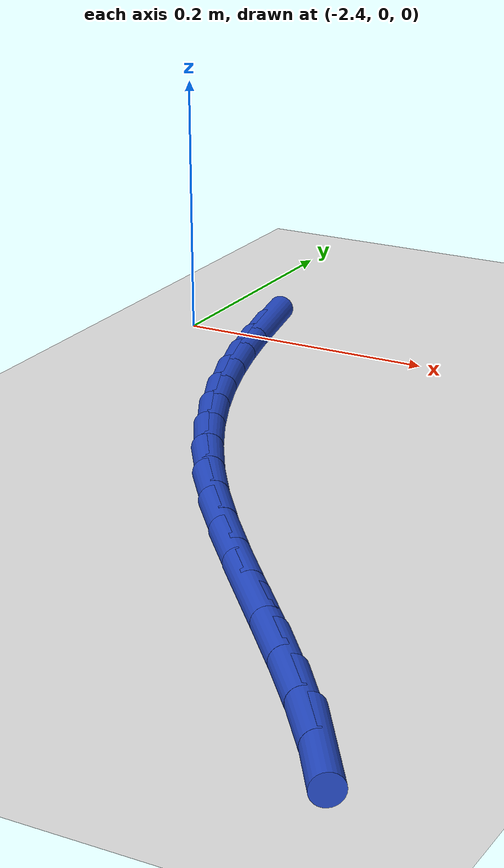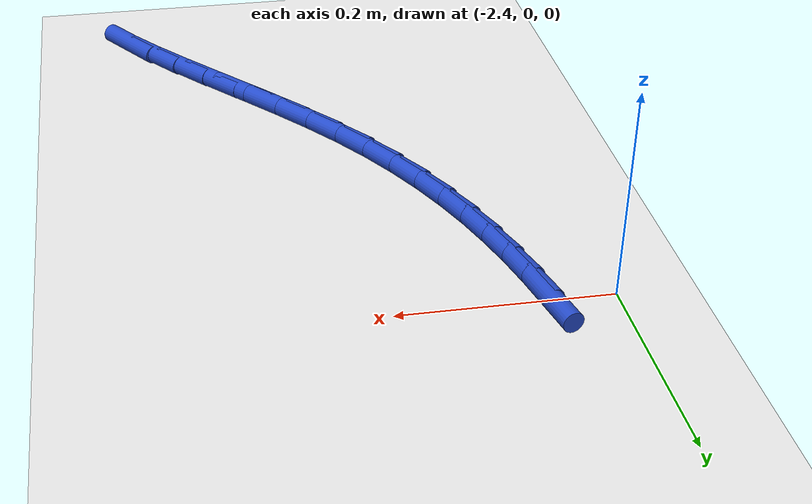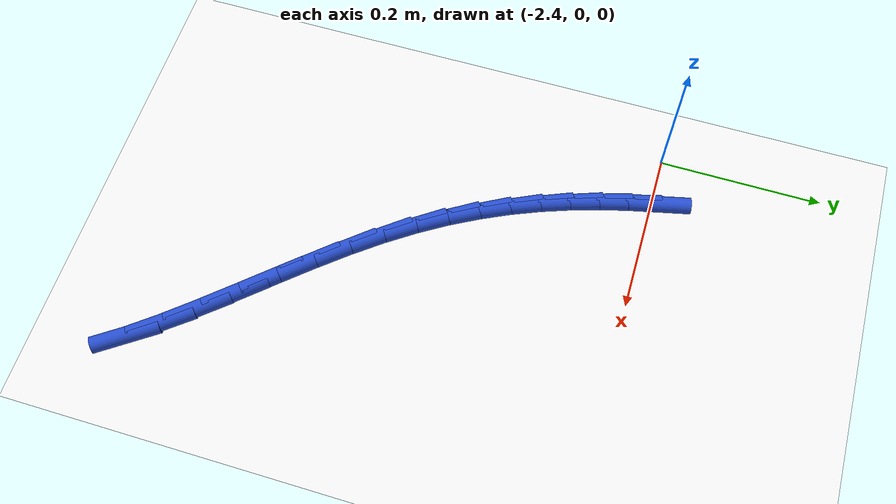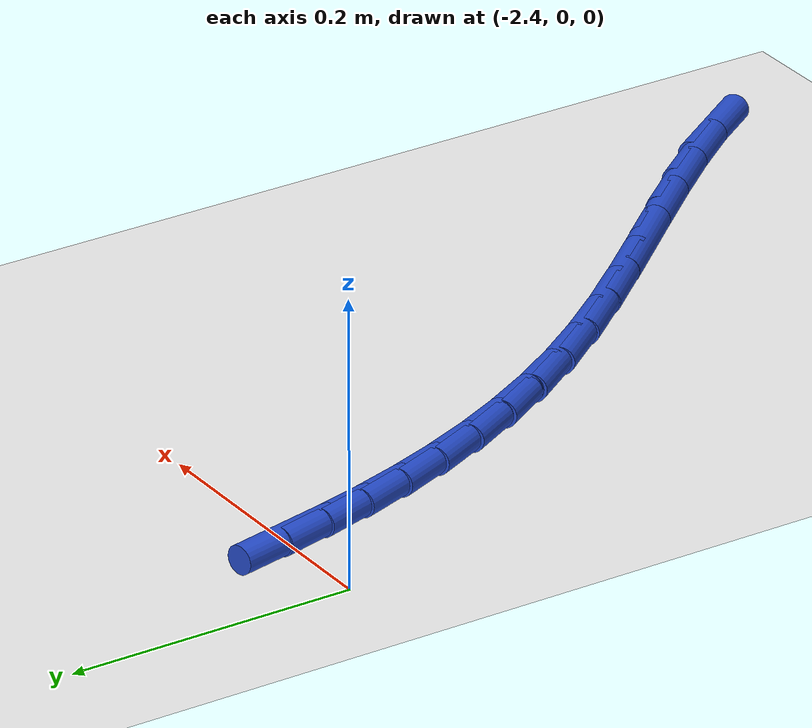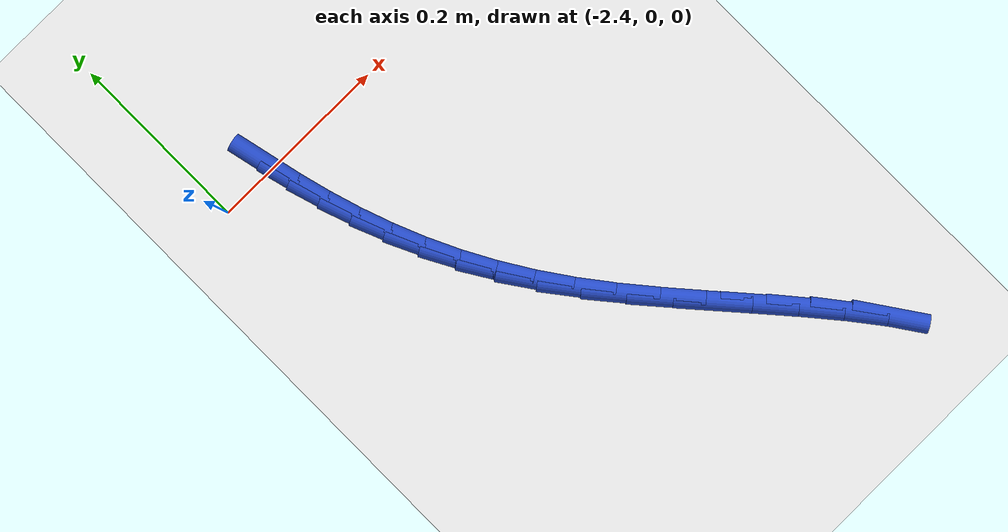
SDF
<sdf version="1.6">
 <world name="default">
  <model name="ground_plane">
   <static>1</static>
   <link name="link">
    <collision name="collision">
     <geometry><plane><normal>0 0 1</normal><size>100 100</size></plane></geometry>
     <surface><friction><ode><mu>100</mu><mu2>50</mu2></ode></friction></surface>
    </collision>
    <visual name="visual">
     <cast_shadows>0</cast_shadows>
     <geometry><plane><normal>0 0 1</normal><size>100 100</size></plane></geometry>
     <material>
      <script><uri>file://media/materials/scripts/gazebo.material</uri><name>Gazebo/WhiteGlow</name></script>
     </material>
    </visual>
   </link>
  </model>
  <model name="line">
   <link name="link_141">
    <pose>-2.3370290691386426 0.007452213844813646 0.01 0 1.57 -1.34808266676666</pose>
    <collision name="collision">
     <geometry><cylinder><radius>0.01</radius><length>0.08</length></cylinder></geometry>
    </collision>
    <visual name="visual">
     <material>
      <script><name>Gazebo/Blue</name><uri>file://media/materials/scripts/gazebo.material</uri></script>
     </material>
     <geometry><cylinder><radius>0.01</radius><length>0.08</length></cylinder></geometry>
    </visual>
   </link>
   <link name="link_142">
    <pose>-2.3292197806200314 -0.027030369682753946 0.01 0 1.57 -1.3132531029127608</pose>
    <collision name="collision">
     <geometry><cylinder><radius>0.01</radius><length>0.08</length></cylinder></geometry>
    </collision>
    <visual name="visual">
     <material>
      <script><name>Gazebo/Blue</name><uri>file://media/materials/scripts/gazebo.material</uri></script>
     </material>
     <geometry><cylinder><radius>0.01</radius><length>0.08</length></cylinder></geometry>
    </visual>
   </link>
   <link name="link_143">
    <pose>-2.3201745972051775 -0.061371436113978564 0.01 0 1.57 -1.2729318869511128</pose>
    <collision name="collision">
     <geometry><cylinder><radius>0.01</radius><length>0.08</length></cylinder></geometry>
    </collision>
    <visual name="visual">
     <material>
      <script><name>Gazebo/Blue</name><uri>file://media/materials/scripts/gazebo.material</uri></script>
     </material>
     <geometry><cylinder><radius>0.01</radius><length>0.08</length></cylinder></geometry>
    </visual>
   </link>
   <link name="link_144">
    <pose>-2.3096560827027606 -0.0956339348034042 0.01 0 1.57 -1.2278176258284499</pose>
    <collision name="collision">
     <geometry><cylinder><radius>0.01</radius><length>0.08</length></cylinder></geometry>
    </collision>
    <visual name="visual">
     <material>
      <script><name>Gazebo/Blue</name><uri>file://media/materials/scripts/gazebo.material</uri></script>
     </material>
     <geometry><cylinder><radius>0.01</radius><length>0.08</length></cylinder></geometry>
    </visual>
   </link>
   <link name="link_145">
    <pose>-2.297426800921459 -0.12988081510557495 0.01 0 1.57 -1.17878543084408</pose>
    <collision name="collision">
     <geometry><cylinder><radius>0.01</radius><length>0.08</length></cylinder></geometry>
    </collision>
    <visual name="visual">
     <material>
      <script><name>Gazebo/Blue</name><uri>file://media/materials/scripts/gazebo.material</uri></script>
     </material>
     <geometry><cylinder><radius>0.01</radius><length>0.08</length></cylinder></geometry>
    </visual>
   </link>
   <link name="link_146">
    <pose>-2.283249315669951 -0.16417502637503587 0.01 0 1.57 -1.126850292164816</pose>
    <collision name="collision">
     <geometry><cylinder><radius>0.01</radius><length>0.08</length></cylinder></geometry>
    </collision>
    <visual name="visual">
     <material>
      <script><name>Gazebo/Blue</name><uri>file://media/materials/scripts/gazebo.material</uri></script>
     </material>
     <geometry><cylinder><radius>0.01</radius><length>0.08</length></cylinder></geometry>
    </visual>
   </link>
   <link name="link_147">
    <pose>-2.266886190756918 -0.19857951796632892 0.01 0 1.57 -1.0731088317605708</pose>
    <collision name="collision">
     <geometry><cylinder><radius>0.01</radius><length>0.08</length></cylinder></geometry>
    </collision>
    <visual name="visual">
     <material>
      <script><name>Gazebo/Blue</name><uri>file://media/materials/scripts/gazebo.material</uri></script>
     </material>
     <geometry><cylinder><radius>0.01</radius><length>0.08</length></cylinder></geometry>
    </visual>
   </link>
   <link name="link_148">
    <pose>-2.248099989991038 -0.23315723923399928 0.01 0 1.57 -1.0186669999106865</pose>
    <collision name="collision">
     <geometry><cylinder><radius>0.01</radius><length>0.08</length></cylinder></geometry>
    </collision>
    <visual name="visual">
     <material>
      <script><name>Gazebo/Blue</name><uri>file://media/materials/scripts/gazebo.material</uri></script>
     </material>
     <geometry><cylinder><radius>0.01</radius><length>0.08</length></cylinder></geometry>
    </visual>
   </link>
   <link name="link_149">
    <pose>-2.2266532771809873 -0.2679711395325909 0.01 0 1.57 -0.9645658209293594</pose>
    <collision name="collision">
     <geometry><cylinder><radius>0.01</radius><length>0.08</length></cylinder></geometry>
    </collision>
    <visual name="visual">
     <material>
      <script><name>Gazebo/Blue</name><uri>file://media/materials/scripts/gazebo.material</uri></script>
     </material>
     <geometry><cylinder><radius>0.01</radius><length>0.08</length></cylinder></geometry>
    </visual>
   </link>
   <link name="link_150">
    <pose>-2.202308616135447 -0.30308416821664785 0.01 0 1.57 -0.9138054454530485</pose>
    <collision name="collision">
     <geometry><cylinder><radius>0.01</radius><length>0.08</length></cylinder></geometry>
    </collision>
    <visual name="visual">
     <material>
      <script><name>Gazebo/Blue</name><uri>file://media/materials/scripts/gazebo.material</uri></script>
     </material>
     <geometry><cylinder><radius>0.01</radius><length>0.08</length></cylinder></geometry>
    </visual>
   </link>
   <link name="link_151">
    <pose>-2.1749716896227813 -0.33852708443304586 0.01 0 1.57 -0.8773218003871431</pose>
    <collision name="collision">
     <geometry><cylinder><radius>0.01</radius><length>0.08</length></cylinder></geometry>
    </collision>
    <visual name="visual">
     <material>
      <script><name>Gazebo/Blue</name><uri>file://media/materials/scripts/gazebo.material</uri></script>
     </material>
     <geometry><cylinder><radius>0.01</radius><length>0.08</length></cylinder></geometry>
    </visual>
   </link>
   <link name="link_152">
    <pose>-2.1453646069098378 -0.3741470173009562 0.01 0 1.57 -0.8562101595774771</pose>
    <collision name="collision">
     <geometry><cylinder><radius>0.01</radius><length>0.08</length></cylinder></geometry>
    </collision>
    <visual name="visual">
     <material>
      <script><name>Gazebo/Blue</name><uri>file://media/materials/scripts/gazebo.material</uri></script>
     </material>
     <geometry><cylinder><radius>0.01</radius><length>0.08</length></cylinder></geometry>
    </visual>
   </link>
   <link name="link_153">
    <pose>-2.1144985359006574 -0.40972608109050446 0.01 0 1.57 -0.8486351070173503</pose>
    <collision name="collision">
     <geometry><cylinder><radius>0.01</radius><length>0.08</length></cylinder></geometry>
    </collision>
    <visual name="visual">
     <material>
      <script><name>Gazebo/Blue</name><uri>file://media/materials/scripts/gazebo.material</uri></script>
     </material>
     <geometry><cylinder><radius>0.01</radius><length>0.08</length></cylinder></geometry>
    </visual>
   </link>
   <link name="link_154">
    <pose>-2.0833849812307546 -0.4450463143344286 0.01 0 1.57 -0.8542216816335356</pose>
    <collision name="collision">
     <geometry><cylinder><radius>0.01</radius><length>0.08</length></cylinder></geometry>
    </collision>
    <visual name="visual">
     <material>
      <script><name>Gazebo/Blue</name><uri>file://media/materials/scripts/gazebo.material</uri></script>
     </material>
     <geometry><cylinder><radius>0.01</radius><length>0.08</length></cylinder></geometry>
    </visual>
   </link>
   <link name="link_155">
    <pose>-2.0530354475356436 -0.4798897555654679 0.01 0 1.57 -0.8740434300525161</pose>
    <collision name="collision">
     <geometry><cylinder><radius>0.01</radius><length>0.08</length></cylinder></geometry>
    </collision>
    <visual name="visual">
     <material>
      <script><name>Gazebo/Blue</name><uri>file://media/materials/scripts/gazebo.material</uri></script>
     </material>
     <geometry><cylinder><radius>0.01</radius><length>0.08</length></cylinder></geometry>
    </visual>
   </link>
   <link name="link_156">
    <pose>-2.024461439450842 -0.514038443316358 0.01 0 1.57 -0.9109395010044883</pose>
    <collision name="collision">
     <geometry><cylinder><radius>0.01</radius><length>0.08</length></cylinder></geometry>
    </collision>
    <visual name="visual">
     <material>
      <script><name>Gazebo/Blue</name><uri>file://media/materials/scripts/gazebo.material</uri></script>
     </material>
     <geometry><cylinder><radius>0.01</radius><length>0.08</length></cylinder></geometry>
    </visual>
   </link>
   <link name="link_157">
    <pose>-1.9986744616118641 -0.5472744161198381 0.01 0 1.57 -0.9702867028527846</pose>
    <collision name="collision">
     <geometry><cylinder><radius>0.01</radius><length>0.08</length></cylinder></geometry>
    </collision>
    <visual name="visual">
     <material>
      <script><name>Gazebo/Blue</name><uri>file://media/materials/scripts/gazebo.material</uri></script>
     </material>
     <geometry><cylinder><radius>0.01</radius><length>0.08</length></cylinder></geometry>
    </visual>
   </link>
  </model>
 </world>
</sdf>
